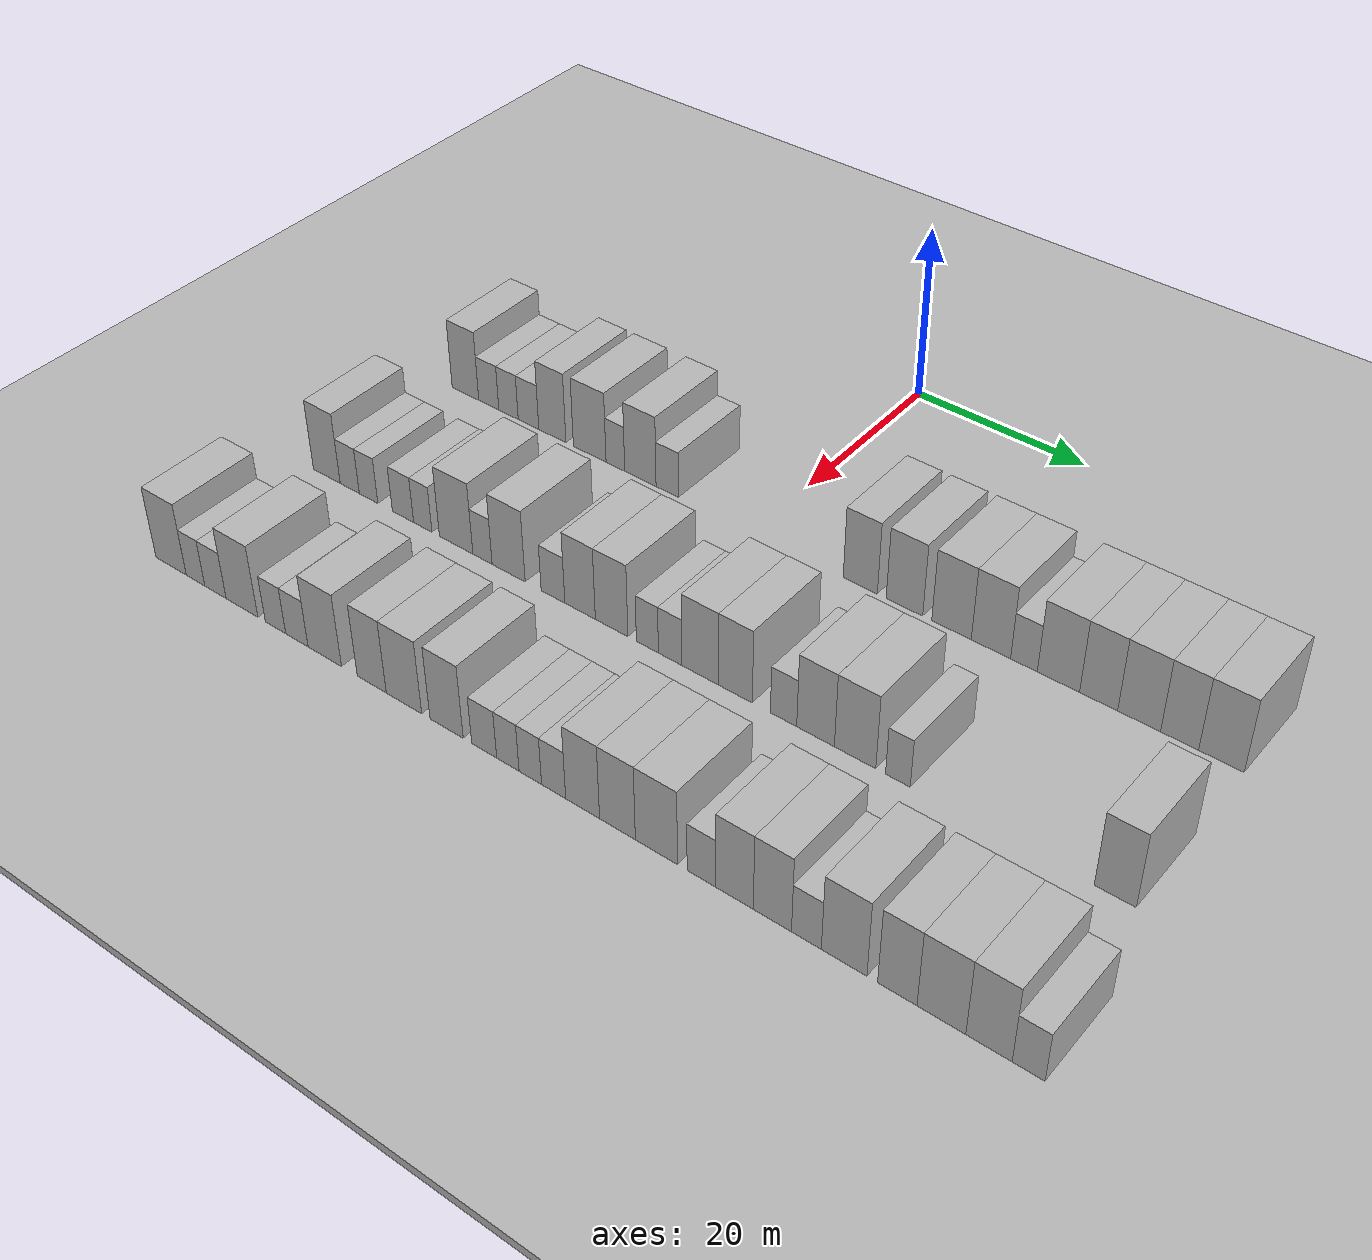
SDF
<sdf version="1.6">
 <world name="default">
  <include><name>ground_plane_1</name><uri>model://HANNAS_ground_plane</uri></include>
  <include>
   <name>ground_plane_2</name>
   <uri>model://HANNAS_ground_plane</uri>
   <pose>100 0 0  0 0 0</pose>
  </include>
  <model name="building_47">
   <static>1</static>
   <pose>25.0000 -37.3677 0 0.000000 0.000000 0.000000</pose>
   <link name="link">
    <pose>0 0 4.50 0 0 0</pose>
    <collision name="collision"><geometry><box><size>10.0000 3.7991 9.0000</size></box></geometry></collision>
    <visual name="visual">
     <cast_shadows>0</cast_shadows>
     <geometry><box><size>10.0000 3.7991 9.0000</size></box></geometry>
     <material>
      <script>
       <uri>model://HANNAS_wall/materials/scripts</uri>
       <uri>model://HANNAS_wall/materials/textures</uri>
       <name>vrc/HANNAS_wall</name>
      </script>
     </material>
    </visual>
   </link>
  </model>
  <model name="building_48">
   <static>1</static>
   <pose>25.0000 -34.0540 0 0.000000 0.000000 0.000000</pose>
   <link name="link">
    <pose>0 0 3.00 0 0 0</pose>
    <collision name="collision"><geometry><box><size>10.0000 2.8284 6.0000</size></box></geometry></collision>
    <visual name="visual">
     <cast_shadows>0</cast_shadows>
     <geometry><box><size>10.0000 2.8284 6.0000</size></box></geometry>
     <material>
      <script>
       <uri>model://HANNAS_wall/materials/scripts</uri>
       <uri>model://HANNAS_wall/materials/textures</uri>
       <name>vrc/HANNAS_wall</name>
      </script>
     </material>
    </visual>
   </link>
  </model>
  <model name="building_49">
   <static>1</static>
   <pose>25.0000 -31.2885 0 0.000000 0.000000 0.000000</pose>
   <link name="link">
    <pose>0 0 3.00 0 0 0</pose>
    <collision name="collision"><geometry><box><size>10.0000 2.7026 6.0000</size></box></geometry></collision>
    <visual name="visual">
     <cast_shadows>0</cast_shadows>
     <geometry><box><size>10.0000 2.7026 6.0000</size></box></geometry>
     <material>
      <script>
       <uri>model://HANNAS_wall/materials/scripts</uri>
       <uri>model://HANNAS_wall/materials/textures</uri>
       <name>vrc/HANNAS_wall</name>
      </script>
     </material>
    </visual>
   </link>
  </model>
  <model name="building_50">
   <static>1</static>
   <pose>25.0000 -28.5184 0 0.000000 0.000000 0.000000</pose>
   <link name="link">
    <pose>0 0 3.00 0 0 0</pose>
    <collision name="collision"><geometry><box><size>10.0000 2.8377 6.0000</size></box></geometry></collision>
    <visual name="visual">
     <cast_shadows>0</cast_shadows>
     <geometry><box><size>10.0000 2.8377 6.0000</size></box></geometry>
     <material>
      <script>
       <uri>model://HANNAS_wall/materials/scripts</uri>
       <uri>model://HANNAS_wall/materials/textures</uri>
       <name>vrc/HANNAS_wall</name>
      </script>
     </material>
    </visual>
   </link>
  </model>
  <model name="building_51">
   <static>1</static>
   <pose>25.0000 -25.2551 0 0.000000 0.000000 0.000000</pose>
   <link name="link">
    <pose>0 0 4.50 0 0 0</pose>
    <collision name="collision"><geometry><box><size>10.0000 3.6889 9.0000</size></box></geometry></collision>
    <visual name="visual">
     <cast_shadows>0</cast_shadows>
     <geometry><box><size>10.0000 3.6889 9.0000</size></box></geometry>
     <material>
      <script>
       <uri>model://HANNAS_wall/materials/scripts</uri>
       <uri>model://HANNAS_wall/materials/textures</uri>
       <name>vrc/HANNAS_wall</name>
      </script>
     </material>
    </visual>
   </link>
  </model>
  <model name="building_52">
   <static>1</static>
   <pose>25.0000 -20.2376 0 0.000000 0.000000 0.000000</pose>
   <link name="link">
    <pose>0 0 4.50 0 0 0</pose>
    <collision name="collision"><geometry><box><size>10.0000 4.3462 9.0000</size></box></geometry></collision>
    <visual name="visual">
     <cast_shadows>0</cast_shadows>
     <geometry><box><size>10.0000 4.3462 9.0000</size></box></geometry>
     <material>
      <script>
       <uri>model://HANNAS_wall/materials/scripts</uri>
       <uri>model://HANNAS_wall/materials/textures</uri>
       <name>vrc/HANNAS_wall</name>
      </script>
     </material>
    </visual>
   </link>
  </model>
  <model name="building_53">
   <static>1</static>
   <pose>25.0000 -16.8437 0 0.000000 0.000000 0.000000</pose>
   <link name="link">
    <pose>0 0 3.00 0 0 0</pose>
    <collision name="collision"><geometry><box><size>10.0000 2.4417 6.0000</size></box></geometry></collision>
    <visual name="visual">
     <cast_shadows>0</cast_shadows>
     <geometry><box><size>10.0000 2.4417 6.0000</size></box></geometry>
     <material>
      <script>
       <uri>model://HANNAS_wall/materials/scripts</uri>
       <uri>model://HANNAS_wall/materials/textures</uri>
       <name>vrc/HANNAS_wall</name>
      </script>
     </material>
    </visual>
   </link>
  </model>
  <model name="building_54">
   <static>1</static>
   <pose>25.0000 -13.5977 0 0.000000 0.000000 0.000000</pose>
   <link name="link">
    <pose>0 0 4.50 0 0 0</pose>
    <collision name="collision"><geometry><box><size>10.0000 4.0503 9.0000</size></box></geometry></collision>
    <visual name="visual">
     <cast_shadows>0</cast_shadows>
     <geometry><box><size>10.0000 4.0503 9.0000</size></box></geometry>
     <material>
      <script>
       <uri>model://HANNAS_wall/materials/scripts</uri>
       <uri>model://HANNAS_wall/materials/textures</uri>
       <name>vrc/HANNAS_wall</name>
      </script>
     </material>
    </visual>
   </link>
  </model>
  <model name="building_55">
   <static>1</static>
   <pose>25.0000 -10.1420 0 0.000000 0.000000 0.000000</pose>
   <link name="link">
    <pose>0 0 3.00 0 0 0</pose>
    <collision name="collision"><geometry><box><size>10.0000 2.8613 6.0000</size></box></geometry></collision>
    <visual name="visual">
     <cast_shadows>0</cast_shadows>
     <geometry><box><size>10.0000 2.8613 6.0000</size></box></geometry>
     <material>
      <script>
       <uri>model://HANNAS_wall/materials/scripts</uri>
       <uri>model://HANNAS_wall/materials/textures</uri>
       <name>vrc/HANNAS_wall</name>
      </script>
     </material>
    </visual>
   </link>
  </model>
  <model name="building_56">
   <static>1</static>
   <pose>25.0000 13.1468 0 0.000000 0.000000 0.000000</pose>
   <link name="link">
    <pose>0 0 4.50 0 0 0</pose>
    <collision name="collision"><geometry><box><size>10.0000 3.9054 9.0000</size></box></geometry></collision>
    <visual name="visual">
     <cast_shadows>0</cast_shadows>
     <geometry><box><size>10.0000 3.9054 9.0000</size></box></geometry>
     <material>
      <script>
       <uri>model://HANNAS_wall/materials/scripts</uri>
       <uri>model://HANNAS_wall/materials/textures</uri>
       <name>vrc/HANNAS_wall</name>
      </script>
     </material>
    </visual>
   </link>
  </model>
  <model name="building_57">
   <static>1</static>
   <pose>25.0000 18.1420 0 0.000000 0.000000 0.000000</pose>
   <link name="link">
    <pose>0 0 4.50 0 0 0</pose>
    <collision name="collision"><geometry><box><size>10.0000 4.0850 9.0000</size></box></geometry></collision>
    <visual name="visual">
     <cast_shadows>0</cast_shadows>
     <geometry><box><size>10.0000 4.0850 9.0000</size></box></geometry>
     <material>
      <script>
       <uri>model://HANNAS_wall/materials/scripts</uri>
       <uri>model://HANNAS_wall/materials/textures</uri>
       <name>vrc/HANNAS_wall</name>
      </script>
     </material>
    </visual>
   </link>
  </model>
  <model name="building_58">
   <static>1</static>
   <pose>25.0000 23.3389 0 0.000000 0.000000 0.000000</pose>
   <link name="link">
    <pose>0 0 4.50 0 0 0</pose>
    <collision name="collision"><geometry><box><size>10.0000 4.3088 9.0000</size></box></geometry></collision>
    <visual name="visual">
     <cast_shadows>0</cast_shadows>
     <geometry><box><size>10.0000 4.3088 9.0000</size></box></geometry>
     <material>
      <script>
       <uri>model://HANNAS_wall/materials/scripts</uri>
       <uri>model://HANNAS_wall/materials/textures</uri>
       <name>vrc/HANNAS_wall</name>
      </script>
     </material>
    </visual>
   </link>
  </model>
  <model name="building_59">
   <static>1</static>
   <pose>25.0000 27.5968 0 0.000000 0.000000 0.000000</pose>
   <link name="link">
    <pose>0 0 4.50 0 0 0</pose>
    <collision name="collision"><geometry><box><size>10.0000 4.2070 9.0000</size></box></geometry></collision>
    <visual name="visual">
     <cast_shadows>0</cast_shadows>
     <geometry><box><size>10.0000 4.2070 9.0000</size></box></geometry>
     <material>
      <script>
       <uri>model://HANNAS_wall/materials/scripts</uri>
       <uri>model://HANNAS_wall/materials/textures</uri>
       <name>vrc/HANNAS_wall</name>
      </script>
     </material>
    </visual>
   </link>
  </model>
  <model name="building_60">
   <static>1</static>
   <pose>25.0000 31.1059 0 0.000000 0.000000 0.000000</pose>
   <link name="link">
    <pose>0 0 3.00 0 0 0</pose>
    <collision name="collision"><geometry><box><size>10.0000 2.8114 6.0000</size></box></geometry></collision>
    <visual name="visual">
     <cast_shadows>0</cast_shadows>
     <geometry><box><size>10.0000 2.8114 6.0000</size></box></geometry>
     <material>
      <script>
       <uri>model://HANNAS_wall/materials/scripts</uri>
       <uri>model://HANNAS_wall/materials/textures</uri>
       <name>vrc/HANNAS_wall</name>
      </script>
     </material>
    </visual>
   </link>
  </model>
  <model name="building_61">
   <static>1</static>
   <pose>25.0000 34.6930 0 0.000000 0.000000 0.000000</pose>
   <link name="link">
    <pose>0 0 4.50 0 0 0</pose>
    <collision name="collision"><geometry><box><size>10.0000 4.3627 9.0000</size></box></geometry></collision>
    <visual name="visual">
     <cast_shadows>0</cast_shadows>
     <geometry><box><size>10.0000 4.3627 9.0000</size></box></geometry>
     <material>
      <script>
       <uri>model://HANNAS_wall/materials/scripts</uri>
       <uri>model://HANNAS_wall/materials/textures</uri>
       <name>vrc/HANNAS_wall</name>
      </script>
     </material>
    </visual>
   </link>
  </model>
  <model name="building_62">
   <static>1</static>
   <pose>25.0000 38.8026 0 0.000000 0.000000 0.000000</pose>
   <link name="link">
    <pose>0 0 4.50 0 0 0</pose>
    <collision name="collision"><geometry><box><size>10.0000 3.8565 9.0000</size></box></geometry></collision>
    <visual name="visual">
     <cast_shadows>0</cast_shadows>
     <geometry><box><size>10.0000 3.8565 9.0000</size></box></geometry>
     <material>
      <script>
       <uri>model://HANNAS_wall/materials/scripts</uri>
       <uri>model://HANNAS_wall/materials/textures</uri>
       <name>vrc/HANNAS_wall</name>
      </script>
     </material>
    </visual>
   </link>
  </model>
  <model name="building_63">
   <static>1</static>
   <pose>25.0000 42.8578 0 0.000000 0.000000 0.000000</pose>
   <link name="link">
    <pose>0 0 4.50 0 0 0</pose>
    <collision name="collision"><geometry><box><size>10.0000 4.2539 9.0000</size></box></geometry></collision>
    <visual name="visual">
     <cast_shadows>0</cast_shadows>
     <geometry><box><size>10.0000 4.2539 9.0000</size></box></geometry>
     <material>
      <script>
       <uri>model://HANNAS_wall/materials/scripts</uri>
       <uri>model://HANNAS_wall/materials/textures</uri>
       <name>vrc/HANNAS_wall</name>
      </script>
     </material>
    </visual>
   </link>
  </model>
  <model name="building_64">
   <static>1</static>
   <pose>25.0000 46.8342 0 0.000000 0.000000 0.000000</pose>
   <link name="link">
    <pose>0 0 4.50 0 0 0</pose>
    <collision name="collision"><geometry><box><size>10.0000 3.6990 9.0000</size></box></geometry></collision>
    <visual name="visual">
     <cast_shadows>0</cast_shadows>
     <geometry><box><size>10.0000 3.6990 9.0000</size></box></geometry>
     <material>
      <script>
       <uri>model://HANNAS_wall/materials/scripts</uri>
       <uri>model://HANNAS_wall/materials/textures</uri>
       <name>vrc/HANNAS_wall</name>
      </script>
     </material>
    </visual>
   </link>
  </model>
  <model name="building_65">
   <static>1</static>
   <pose>25.0000 50.8625 0 0.000000 0.000000 0.000000</pose>
   <link name="link">
    <pose>0 0 4.50 0 0 0</pose>
    <collision name="collision"><geometry><box><size>10.0000 4.3575 9.0000</size></box></geometry></collision>
    <visual name="visual">
     <cast_shadows>0</cast_shadows>
     <geometry><box><size>10.0000 4.3575 9.0000</size></box></geometry>
     <material>
      <script>
       <uri>model://HANNAS_wall/materials/scripts</uri>
       <uri>model://HANNAS_wall/materials/textures</uri>
       <name>vrc/HANNAS_wall</name>
      </script>
     </material>
    </visual>
   </link>
  </model>
  <model name="building_153">
   <static>1</static>
   <pose>44.0000 -38.6591 0 0.000000 0.000000 0.000000</pose>
   <link name="link">
    <pose>0 0 4.50 0 0 0</pose>
    <collision name="collision"><geometry><box><size>10.0000 3.7922 9.0000</size></box></geometry></collision>
    <visual name="visual">
     <cast_shadows>0</cast_shadows>
     <geometry><box><size>10.0000 3.7922 9.0000</size></box></geometry>
     <material>
      <script>
       <uri>model://HANNAS_wall/materials/scripts</uri>
       <uri>model://HANNAS_wall/materials/textures</uri>
       <name>vrc/HANNAS_wall</name>
      </script>
     </material>
    </visual>
   </link>
  </model>
  <model name="building_154">
   <static>1</static>
   <pose>44.0000 -35.4287 0 0.000000 0.000000 0.000000</pose>
   <link name="link">
    <pose>0 0 3.00 0 0 0</pose>
    <collision name="collision"><geometry><box><size>10.0000 2.6685 6.0000</size></box></geometry></collision>
    <visual name="visual">
     <cast_shadows>0</cast_shadows>
     <geometry><box><size>10.0000 2.6685 6.0000</size></box></geometry>
     <material>
      <script>
       <uri>model://HANNAS_wall/materials/scripts</uri>
       <uri>model://HANNAS_wall/materials/textures</uri>
       <name>vrc/HANNAS_wall</name>
      </script>
     </material>
    </visual>
   </link>
  </model>
  <model name="building_155">
   <static>1</static>
   <pose>44.0000 -32.8111 0 0.000000 0.000000 0.000000</pose>
   <link name="link">
    <pose>0 0 3.00 0 0 0</pose>
    <collision name="collision"><geometry><box><size>10.0000 2.5667 6.0000</size></box></geometry></collision>
    <visual name="visual">
     <cast_shadows>0</cast_shadows>
     <geometry><box><size>10.0000 2.5667 6.0000</size></box></geometry>
     <material>
      <script>
       <uri>model://HANNAS_wall/materials/scripts</uri>
       <uri>model://HANNAS_wall/materials/textures</uri>
       <name>vrc/HANNAS_wall</name>
      </script>
     </material>
    </visual>
   </link>
  </model>
  <model name="building_156">
   <static>1</static>
   <pose>44.0000 -28.0912 0 0.000000 0.000000 0.000000</pose>
   <link name="link">
    <pose>0 0 3.00 0 0 0</pose>
    <collision name="collision"><geometry><box><size>10.0000 2.8731 6.0000</size></box></geometry></collision>
    <visual name="visual">
     <cast_shadows>0</cast_shadows>
     <geometry><box><size>10.0000 2.8731 6.0000</size></box></geometry>
     <material>
      <script>
       <uri>model://HANNAS_wall/materials/scripts</uri>
       <uri>model://HANNAS_wall/materials/textures</uri>
       <name>vrc/HANNAS_wall</name>
      </script>
     </material>
    </visual>
   </link>
  </model>
  <model name="building_157">
   <static>1</static>
   <pose>44.0000 -25.4272 0 0.000000 0.000000 0.000000</pose>
   <link name="link">
    <pose>0 0 3.00 0 0 0</pose>
    <collision name="collision"><geometry><box><size>10.0000 2.4548 6.0000</size></box></geometry></collision>
    <visual name="visual">
     <cast_shadows>0</cast_shadows>
     <geometry><box><size>10.0000 2.4548 6.0000</size></box></geometry>
     <material>
      <script>
       <uri>model://HANNAS_wall/materials/scripts</uri>
       <uri>model://HANNAS_wall/materials/textures</uri>
       <name>vrc/HANNAS_wall</name>
      </script>
     </material>
    </visual>
   </link>
  </model>
  <model name="building_158">
   <static>1</static>
   <pose>44.0000 -21.0082 0 0.000000 0.000000 0.000000</pose>
   <link name="link">
    <pose>0 0 4.50 0 0 0</pose>
    <collision name="collision"><geometry><box><size>10.0000 4.3831 9.0000</size></box></geometry></collision>
    <visual name="visual">
     <cast_shadows>0</cast_shadows>
     <geometry><box><size>10.0000 4.3831 9.0000</size></box></geometry>
     <material>
      <script>
       <uri>model://HANNAS_wall/materials/scripts</uri>
       <uri>model://HANNAS_wall/materials/textures</uri>
       <name>vrc/HANNAS_wall</name>
      </script>
     </material>
    </visual>
   </link>
  </model>
  <model name="building_159">
   <static>1</static>
   <pose>44.0000 -17.5722 0 0.000000 0.000000 0.000000</pose>
   <link name="link">
    <pose>0 0 3.00 0 0 0</pose>
    <collision name="collision"><geometry><box><size>10.0000 2.4891 6.0000</size></box></geometry></collision>
    <visual name="visual">
     <cast_shadows>0</cast_shadows>
     <geometry><box><size>10.0000 2.4891 6.0000</size></box></geometry>
     <material>
      <script>
       <uri>model://HANNAS_wall/materials/scripts</uri>
       <uri>model://HANNAS_wall/materials/textures</uri>
       <name>vrc/HANNAS_wall</name>
      </script>
     </material>
    </visual>
   </link>
  </model>
  <model name="building_160">
   <static>1</static>
   <pose>44.0000 -14.2243 0 0.000000 0.000000 0.000000</pose>
   <link name="link">
    <pose>0 0 4.50 0 0 0</pose>
    <collision name="collision"><geometry><box><size>10.0000 4.2065 9.0000</size></box></geometry></collision>
    <visual name="visual">
     <cast_shadows>0</cast_shadows>
     <geometry><box><size>10.0000 4.2065 9.0000</size></box></geometry>
     <material>
      <script>
       <uri>model://HANNAS_wall/materials/scripts</uri>
       <uri>model://HANNAS_wall/materials/textures</uri>
       <name>vrc/HANNAS_wall</name>
      </script>
     </material>
    </visual>
   </link>
  </model>
  <model name="building_161">
   <static>1</static>
   <pose>44.0000 -8.6510 0 0.000000 0.000000 0.000000</pose>
   <link name="link">
    <pose>0 0 3.00 0 0 0</pose>
    <collision name="collision"><geometry><box><size>10.0000 2.9402 6.0000</size></box></geometry></collision>
    <visual name="visual">
     <cast_shadows>0</cast_shadows>
     <geometry><box><size>10.0000 2.9402 6.0000</size></box></geometry>
     <material>
      <script>
       <uri>model://HANNAS_wall/materials/scripts</uri>
       <uri>model://HANNAS_wall/materials/textures</uri>
       <name>vrc/HANNAS_wall</name>
      </script>
     </material>
    </visual>
   </link>
  </model>
  <model name="building_162">
   <static>1</static>
   <pose>44.0000 -5.3216 0 0.000000 0.000000 0.000000</pose>
   <link name="link">
    <pose>0 0 4.50 0 0 0</pose>
    <collision name="collision"><geometry><box><size>10.0000 3.7186 9.0000</size></box></geometry></collision>
    <visual name="visual">
     <cast_shadows>0</cast_shadows>
     <geometry><box><size>10.0000 3.7186 9.0000</size></box></geometry>
     <material>
      <script>
       <uri>model://HANNAS_wall/materials/scripts</uri>
       <uri>model://HANNAS_wall/materials/textures</uri>
       <name>vrc/HANNAS_wall</name>
      </script>
     </material>
    </visual>
   </link>
  </model>
  <model name="building_163">
   <static>1</static>
   <pose>44.0000 -1.5085 0 0.000000 0.000000 0.000000</pose>
   <link name="link">
    <pose>0 0 4.50 0 0 0</pose>
    <collision name="collision"><geometry><box><size>10.0000 3.9077 9.0000</size></box></geometry></collision>
    <visual name="visual">
     <cast_shadows>0</cast_shadows>
     <geometry><box><size>10.0000 3.9077 9.0000</size></box></geometry>
     <material>
      <script>
       <uri>model://HANNAS_wall/materials/scripts</uri>
       <uri>model://HANNAS_wall/materials/textures</uri>
       <name>vrc/HANNAS_wall</name>
      </script>
     </material>
    </visual>
   </link>
  </model>
  <model name="building_164">
   <static>1</static>
   <pose>44.0000 2.7362 0 0.000000 0.000000 0.000000</pose>
   <link name="link">
    <pose>0 0 3.00 0 0 0</pose>
    <collision name="collision"><geometry><box><size>10.0000 2.5817 6.0000</size></box></geometry></collision>
    <visual name="visual">
     <cast_shadows>0</cast_shadows>
     <geometry><box><size>10.0000 2.5817 6.0000</size></box></geometry>
     <material>
      <script>
       <uri>model://HANNAS_wall/materials/scripts</uri>
       <uri>model://HANNAS_wall/materials/textures</uri>
       <name>vrc/HANNAS_wall</name>
      </script>
     </material>
    </visual>
   </link>
  </model>
  <model name="building_165">
   <static>1</static>
   <pose>44.0000 5.3833 0 0.000000 0.000000 0.000000</pose>
   <link name="link">
    <pose>0 0 3.00 0 0 0</pose>
    <collision name="collision"><geometry><box><size>10.0000 2.7125 6.0000</size></box></geometry></collision>
    <visual name="visual">
     <cast_shadows>0</cast_shadows>
     <geometry><box><size>10.0000 2.7125 6.0000</size></box></geometry>
     <material>
      <script>
       <uri>model://HANNAS_wall/materials/scripts</uri>
       <uri>model://HANNAS_wall/materials/textures</uri>
       <name>vrc/HANNAS_wall</name>
      </script>
     </material>
    </visual>
   </link>
  </model>
  <model name="building_166">
   <static>1</static>
   <pose>44.0000 8.8289 0 0.000000 0.000000 0.000000</pose>
   <link name="link">
    <pose>0 0 4.50 0 0 0</pose>
    <collision name="collision"><geometry><box><size>10.0000 4.1788 9.0000</size></box></geometry></collision>
    <visual name="visual">
     <cast_shadows>0</cast_shadows>
     <geometry><box><size>10.0000 4.1788 9.0000</size></box></geometry>
     <material>
      <script>
       <uri>model://HANNAS_wall/materials/scripts</uri>
       <uri>model://HANNAS_wall/materials/textures</uri>
       <name>vrc/HANNAS_wall</name>
      </script>
     </material>
    </visual>
   </link>
  </model>
  <model name="building_167">
   <static>1</static>
   <pose>44.0000 12.8094 0 0.000000 0.000000 0.000000</pose>
   <link name="link">
    <pose>0 0 4.50 0 0 0</pose>
    <collision name="collision"><geometry><box><size>10.0000 3.7822 9.0000</size></box></geometry></collision>
    <visual name="visual">
     <cast_shadows>0</cast_shadows>
     <geometry><box><size>10.0000 3.7822 9.0000</size></box></geometry>
     <material>
      <script>
       <uri>model://HANNAS_wall/materials/scripts</uri>
       <uri>model://HANNAS_wall/materials/textures</uri>
       <name>vrc/HANNAS_wall</name>
      </script>
     </material>
    </visual>
   </link>
  </model>
  <model name="building_168">
   <static>1</static>
   <pose>44.0000 18.1317 0 0.000000 0.000000 0.000000</pose>
   <link name="link">
    <pose>0 0 3.00 0 0 0</pose>
    <collision name="collision"><geometry><box><size>10.0000 2.8624 6.0000</size></box></geometry></collision>
    <visual name="visual">
     <cast_shadows>0</cast_shadows>
     <geometry><box><size>10.0000 2.8624 6.0000</size></box></geometry>
     <material>
      <script>
       <uri>model://HANNAS_wall/materials/scripts</uri>
       <uri>model://HANNAS_wall/materials/textures</uri>
       <name>vrc/HANNAS_wall</name>
      </script>
     </material>
    </visual>
   </link>
  </model>
  <model name="building_169">
   <static>1</static>
   <pose>44.0000 21.5792 0 0.000000 0.000000 0.000000</pose>
   <link name="link">
    <pose>0 0 4.50 0 0 0</pose>
    <collision name="collision"><geometry><box><size>10.0000 4.0326 9.0000</size></box></geometry></collision>
    <visual name="visual">
     <cast_shadows>0</cast_shadows>
     <geometry><box><size>10.0000 4.0326 9.0000</size></box></geometry>
     <material>
      <script>
       <uri>model://HANNAS_wall/materials/scripts</uri>
       <uri>model://HANNAS_wall/materials/textures</uri>
       <name>vrc/HANNAS_wall</name>
      </script>
     </material>
    </visual>
   </link>
  </model>
  <model name="building_170">
   <static>1</static>
   <pose>44.0000 25.7644 0 0.000000 0.000000 0.000000</pose>
   <link name="link">
    <pose>0 0 4.50 0 0 0</pose>
    <collision name="collision"><geometry><box><size>10.0000 4.3377 9.0000</size></box></geometry></collision>
    <visual name="visual">
     <cast_shadows>0</cast_shadows>
     <geometry><box><size>10.0000 4.3377 9.0000</size></box></geometry>
     <material>
      <script>
       <uri>model://HANNAS_wall/materials/scripts</uri>
       <uri>model://HANNAS_wall/materials/textures</uri>
       <name>vrc/HANNAS_wall</name>
      </script>
     </material>
    </visual>
   </link>
  </model>
  <model name="building_171">
   <static>1</static>
   <pose>44.0000 30.2020 0 0.000000 0.000000 0.000000</pose>
   <link name="link">
    <pose>0 0 3.00 0 0 0</pose>
    <collision name="collision"><geometry><box><size>10.0000 2.5374 6.0000</size></box></geometry></collision>
    <visual name="visual">
     <cast_shadows>0</cast_shadows>
     <geometry><box><size>10.0000 2.5374 6.0000</size></box></geometry>
     <material>
      <script>
       <uri>model://HANNAS_wall/materials/scripts</uri>
       <uri>model://HANNAS_wall/materials/textures</uri>
       <name>vrc/HANNAS_wall</name>
      </script>
     </material>
    </visual>
   </link>
  </model>
  <model name="building_172">
   <static>1</static>
   <pose>44.0000 51.2526 0 0.000000 0.000000 0.000000</pose>
   <link name="link">
    <pose>0 0 4.50 0 0 0</pose>
    <collision name="collision"><geometry><box><size>10.0000 3.8546 9.0000</size></box></geometry></collision>
    <visual name="visual">
     <cast_shadows>0</cast_shadows>
     <geometry><box><size>10.0000 3.8546 9.0000</size></box></geometry>
     <material>
      <script>
       <uri>model://HANNAS_wall/materials/scripts</uri>
       <uri>model://HANNAS_wall/materials/textures</uri>
       <name>vrc/HANNAS_wall</name>
      </script>
     </material>
    </visual>
   </link>
  </model>
  <model name="building_262">
   <static>1</static>
   <pose>63.0000 -40.2764 0 0.000000 0.000000 0.000000</pose>
   <link name="link">
    <pose>0 0 4.50 0 0 0</pose>
    <collision name="collision"><geometry><box><size>10.0000 4.2928 9.0000</size></box></geometry></collision>
    <visual name="visual">
     <cast_shadows>0</cast_shadows>
     <geometry><box><size>10.0000 4.2928 9.0000</size></box></geometry>
     <material>
      <script>
       <uri>model://HANNAS_wall/materials/scripts</uri>
       <uri>model://HANNAS_wall/materials/textures</uri>
       <name>vrc/HANNAS_wall</name>
      </script>
     </material>
    </visual>
   </link>
  </model>
  <model name="building_263">
   <static>1</static>
   <pose>63.0000 -36.8367 0 0.000000 0.000000 0.000000</pose>
   <link name="link">
    <pose>0 0 3.00 0 0 0</pose>
    <collision name="collision"><geometry><box><size>10.0000 2.5865 6.0000</size></box></geometry></collision>
    <visual name="visual">
     <cast_shadows>0</cast_shadows>
     <geometry><box><size>10.0000 2.5865 6.0000</size></box></geometry>
     <material>
      <script>
       <uri>model://HANNAS_wall/materials/scripts</uri>
       <uri>model://HANNAS_wall/materials/textures</uri>
       <name>vrc/HANNAS_wall</name>
      </script>
     </material>
    </visual>
   </link>
  </model>
  <model name="building_264">
   <static>1</static>
   <pose>63.0000 -34.0767 0 0.000000 0.000000 0.000000</pose>
   <link name="link">
    <pose>0 0 3.00 0 0 0</pose>
    <collision name="collision"><geometry><box><size>10.0000 2.9336 6.0000</size></box></geometry></collision>
    <visual name="visual">
     <cast_shadows>0</cast_shadows>
     <geometry><box><size>10.0000 2.9336 6.0000</size></box></geometry>
     <material>
      <script>
       <uri>model://HANNAS_wall/materials/scripts</uri>
       <uri>model://HANNAS_wall/materials/textures</uri>
       <name>vrc/HANNAS_wall</name>
      </script>
     </material>
    </visual>
   </link>
  </model>
  <model name="building_265">
   <static>1</static>
   <pose>63.0000 -30.4576 0 0.000000 0.000000 0.000000</pose>
   <link name="link">
    <pose>0 0 4.50 0 0 0</pose>
    <collision name="collision"><geometry><box><size>10.0000 4.3045 9.0000</size></box></geometry></collision>
    <visual name="visual">
     <cast_shadows>0</cast_shadows>
     <geometry><box><size>10.0000 4.3045 9.0000</size></box></geometry>
     <material>
      <script>
       <uri>model://HANNAS_wall/materials/scripts</uri>
       <uri>model://HANNAS_wall/materials/textures</uri>
       <name>vrc/HANNAS_wall</name>
      </script>
     </material>
    </visual>
   </link>
  </model>
  <model name="building_266">
   <static>1</static>
   <pose>63.0000 -25.9549 0 0.000000 0.000000 0.000000</pose>
   <link name="link">
    <pose>0 0 3.00 0 0 0</pose>
    <collision name="collision"><geometry><box><size>10.0000 2.7009 6.0000</size></box></geometry></collision>
    <visual name="visual">
     <cast_shadows>0</cast_shadows>
     <geometry><box><size>10.0000 2.7009 6.0000</size></box></geometry>
     <material>
      <script>
       <uri>model://HANNAS_wall/materials/scripts</uri>
       <uri>model://HANNAS_wall/materials/textures</uri>
       <name>vrc/HANNAS_wall</name>
      </script>
     </material>
    </visual>
   </link>
  </model>
  <model name="building_267">
   <static>1</static>
   <pose>63.0000 -23.1401 0 0.000000 0.000000 0.000000</pose>
   <link name="link">
    <pose>0 0 3.00 0 0 0</pose>
    <collision name="collision"><geometry><box><size>10.0000 2.9287 6.0000</size></box></geometry></collision>
    <visual name="visual">
     <cast_shadows>0</cast_shadows>
     <geometry><box><size>10.0000 2.9287 6.0000</size></box></geometry>
     <material>
      <script>
       <uri>model://HANNAS_wall/materials/scripts</uri>
       <uri>model://HANNAS_wall/materials/textures</uri>
       <name>vrc/HANNAS_wall</name>
      </script>
     </material>
    </visual>
   </link>
  </model>
  <model name="building_268">
   <static>1</static>
   <pose>63.0000 -19.5271 0 0.000000 0.000000 0.000000</pose>
   <link name="link">
    <pose>0 0 4.50 0 0 0</pose>
    <collision name="collision"><geometry><box><size>10.0000 4.2974 9.0000</size></box></geometry></collision>
    <visual name="visual">
     <cast_shadows>0</cast_shadows>
     <geometry><box><size>10.0000 4.2974 9.0000</size></box></geometry>
     <material>
      <script>
       <uri>model://HANNAS_wall/materials/scripts</uri>
       <uri>model://HANNAS_wall/materials/textures</uri>
       <name>vrc/HANNAS_wall</name>
      </script>
     </material>
    </visual>
   </link>
  </model>
  <model name="building_269">
   <static>1</static>
   <pose>63.0000 -13.5703 0 0.000000 0.000000 0.000000</pose>
   <link name="link">
    <pose>0 0 4.50 0 0 0</pose>
    <collision name="collision"><geometry><box><size>10.0000 3.6161 9.0000</size></box></geometry></collision>
    <visual name="visual">
     <cast_shadows>0</cast_shadows>
     <geometry><box><size>10.0000 3.6161 9.0000</size></box></geometry>
     <material>
      <script>
       <uri>model://HANNAS_wall/materials/scripts</uri>
       <uri>model://HANNAS_wall/materials/textures</uri>
       <name>vrc/HANNAS_wall</name>
      </script>
     </material>
    </visual>
   </link>
  </model>
  <model name="building_270">
   <static>1</static>
   <pose>63.0000 -9.5911 0 0.000000 0.000000 0.000000</pose>
   <link name="link">
    <pose>0 0 4.50 0 0 0</pose>
    <collision name="collision"><geometry><box><size>10.0000 4.3423 9.0000</size></box></geometry></collision>
    <visual name="visual">
     <cast_shadows>0</cast_shadows>
     <geometry><box><size>10.0000 4.3423 9.0000</size></box></geometry>
     <material>
      <script>
       <uri>model://HANNAS_wall/materials/scripts</uri>
       <uri>model://HANNAS_wall/materials/textures</uri>
       <name>vrc/HANNAS_wall</name>
      </script>
     </material>
    </visual>
   </link>
  </model>
  <model name="building_271">
   <static>1</static>
   <pose>63.0000 -4.4396 0 0.000000 0.000000 0.000000</pose>
   <link name="link">
    <pose>0 0 4.50 0 0 0</pose>
    <collision name="collision"><geometry><box><size>10.0000 3.9608 9.0000</size></box></geometry></collision>
    <visual name="visual">
     <cast_shadows>0</cast_shadows>
     <geometry><box><size>10.0000 3.9608 9.0000</size></box></geometry>
     <material>
      <script>
       <uri>model://HANNAS_wall/materials/scripts</uri>
       <uri>model://HANNAS_wall/materials/textures</uri>
       <name>vrc/HANNAS_wall</name>
      </script>
     </material>
    </visual>
   </link>
  </model>
  <model name="building_272">
   <static>1</static>
   <pose>63.0000 -0.0026 0 0.000000 0.000000 0.000000</pose>
   <link name="link">
    <pose>0 0 3.00 0 0 0</pose>
    <collision name="collision"><geometry><box><size>10.0000 2.9131 6.0000</size></box></geometry></collision>
    <visual name="visual">
     <cast_shadows>0</cast_shadows>
     <geometry><box><size>10.0000 2.9131 6.0000</size></box></geometry>
     <material>
      <script>
       <uri>model://HANNAS_wall/materials/scripts</uri>
       <uri>model://HANNAS_wall/materials/textures</uri>
       <name>vrc/HANNAS_wall</name>
      </script>
     </material>
    </visual>
   </link>
  </model>
  <model name="building_273">
   <static>1</static>
   <pose>63.0000 2.7423 0 0.000000 0.000000 0.000000</pose>
   <link name="link">
    <pose>0 0 3.00 0 0 0</pose>
    <collision name="collision"><geometry><box><size>10.0000 2.5767 6.0000</size></box></geometry></collision>
    <visual name="visual">
     <cast_shadows>0</cast_shadows>
     <geometry><box><size>10.0000 2.5767 6.0000</size></box></geometry>
     <material>
      <script>
       <uri>model://HANNAS_wall/materials/scripts</uri>
       <uri>model://HANNAS_wall/materials/textures</uri>
       <name>vrc/HANNAS_wall</name>
      </script>
     </material>
    </visual>
   </link>
  </model>
  <model name="building_274">
   <static>1</static>
   <pose>63.0000 5.3092 0 0.000000 0.000000 0.000000</pose>
   <link name="link">
    <pose>0 0 3.00 0 0 0</pose>
    <collision name="collision"><geometry><box><size>10.0000 2.5573 6.0000</size></box></geometry></collision>
    <visual name="visual">
     <cast_shadows>0</cast_shadows>
     <geometry><box><size>10.0000 2.5573 6.0000</size></box></geometry>
     <material>
      <script>
       <uri>model://HANNAS_wall/materials/scripts</uri>
       <uri>model://HANNAS_wall/materials/textures</uri>
       <name>vrc/HANNAS_wall</name>
      </script>
     </material>
    </visual>
   </link>
  </model>
  <model name="building_275">
   <static>1</static>
   <pose>63.0000 7.9377 0 0.000000 0.000000 0.000000</pose>
   <link name="link">
    <pose>0 0 3.00 0 0 0</pose>
    <collision name="collision"><geometry><box><size>10.0000 2.6997 6.0000</size></box></geometry></collision>
    <visual name="visual">
     <cast_shadows>0</cast_shadows>
     <geometry><box><size>10.0000 2.6997 6.0000</size></box></geometry>
     <material>
      <script>
       <uri>model://HANNAS_wall/materials/scripts</uri>
       <uri>model://HANNAS_wall/materials/textures</uri>
       <name>vrc/HANNAS_wall</name>
      </script>
     </material>
    </visual>
   </link>
  </model>
  <model name="building_276">
   <static>1</static>
   <pose>63.0000 11.1549 0 0.000000 0.000000 0.000000</pose>
   <link name="link">
    <pose>0 0 4.50 0 0 0</pose>
    <collision name="collision"><geometry><box><size>10.0000 3.7347 9.0000</size></box></geometry></collision>
    <visual name="visual">
     <cast_shadows>0</cast_shadows>
     <geometry><box><size>10.0000 3.7347 9.0000</size></box></geometry>
     <material>
      <script>
       <uri>model://HANNAS_wall/materials/scripts</uri>
       <uri>model://HANNAS_wall/materials/textures</uri>
       <name>vrc/HANNAS_wall</name>
      </script>
     </material>
    </visual>
   </link>
  </model>
  <model name="building_277">
   <static>1</static>
   <pose>63.0000 14.9537 0 0.000000 0.000000 0.000000</pose>
   <link name="link">
    <pose>0 0 4.50 0 0 0</pose>
    <collision name="collision"><geometry><box><size>10.0000 3.8627 9.0000</size></box></geometry></collision>
    <visual name="visual">
     <cast_shadows>0</cast_shadows>
     <geometry><box><size>10.0000 3.8627 9.0000</size></box></geometry>
     <material>
      <script>
       <uri>model://HANNAS_wall/materials/scripts</uri>
       <uri>model://HANNAS_wall/materials/textures</uri>
       <name>vrc/HANNAS_wall</name>
      </script>
     </material>
    </visual>
   </link>
  </model>
  <model name="building_278">
   <static>1</static>
   <pose>63.0000 19.1101 0 0.000000 0.000000 0.000000</pose>
   <link name="link">
    <pose>0 0 4.50 0 0 0</pose>
    <collision name="collision"><geometry><box><size>10.0000 4.4501 9.0000</size></box></geometry></collision>
    <visual name="visual">
     <cast_shadows>0</cast_shadows>
     <geometry><box><size>10.0000 4.4501 9.0000</size></box></geometry>
     <material>
      <script>
       <uri>model://HANNAS_wall/materials/scripts</uri>
       <uri>model://HANNAS_wall/materials/textures</uri>
       <name>vrc/HANNAS_wall</name>
      </script>
     </material>
    </visual>
   </link>
  </model>
  <model name="building_279">
   <static>1</static>
   <pose>63.0000 23.7899 0 0.000000 0.000000 0.000000</pose>
   <link name="link">
    <pose>0 0 3.00 0 0 0</pose>
    <collision name="collision"><geometry><box><size>10.0000 2.9095 6.0000</size></box></geometry></collision>
    <visual name="visual">
     <cast_shadows>0</cast_shadows>
     <geometry><box><size>10.0000 2.9095 6.0000</size></box></geometry>
     <material>
      <script>
       <uri>model://HANNAS_wall/materials/scripts</uri>
       <uri>model://HANNAS_wall/materials/textures</uri>
       <name>vrc/HANNAS_wall</name>
      </script>
     </material>
    </visual>
   </link>
  </model>
  <model name="building_280">
   <static>1</static>
   <pose>63.0000 27.1574 0 0.000000 0.000000 0.000000</pose>
   <link name="link">
    <pose>0 0 4.50 0 0 0</pose>
    <collision name="collision"><geometry><box><size>10.0000 3.8254 9.0000</size></box></geometry></collision>
    <visual name="visual">
     <cast_shadows>0</cast_shadows>
     <geometry><box><size>10.0000 3.8254 9.0000</size></box></geometry>
     <material>
      <script>
       <uri>model://HANNAS_wall/materials/scripts</uri>
       <uri>model://HANNAS_wall/materials/textures</uri>
       <name>vrc/HANNAS_wall</name>
      </script>
     </material>
    </visual>
   </link>
  </model>
  <model name="building_281">
   <static>1</static>
   <pose>63.0000 30.9663 0 0.000000 0.000000 0.000000</pose>
   <link name="link">
    <pose>0 0 4.50 0 0 0</pose>
    <collision name="collision"><geometry><box><size>10.0000 3.7924 9.0000</size></box></geometry></collision>
    <visual name="visual">
     <cast_shadows>0</cast_shadows>
     <geometry><box><size>10.0000 3.7924 9.0000</size></box></geometry>
     <material>
      <script>
       <uri>model://HANNAS_wall/materials/scripts</uri>
       <uri>model://HANNAS_wall/materials/textures</uri>
       <name>vrc/HANNAS_wall</name>
      </script>
     </material>
    </visual>
   </link>
  </model>
  <model name="building_282">
   <static>1</static>
   <pose>63.0000 34.3117 0 0.000000 0.000000 0.000000</pose>
   <link name="link">
    <pose>0 0 3.00 0 0 0</pose>
    <collision name="collision"><geometry><box><size>10.0000 2.8985 6.0000</size></box></geometry></collision>
    <visual name="visual">
     <cast_shadows>0</cast_shadows>
     <geometry><box><size>10.0000 2.8985 6.0000</size></box></geometry>
     <material>
      <script>
       <uri>model://HANNAS_wall/materials/scripts</uri>
       <uri>model://HANNAS_wall/materials/textures</uri>
       <name>vrc/HANNAS_wall</name>
      </script>
     </material>
    </visual>
   </link>
  </model>
  <model name="building_283">
   <static>1</static>
   <pose>63.0000 37.9365 0 0.000000 0.000000 0.000000</pose>
   <link name="link">
    <pose>0 0 4.50 0 0 0</pose>
    <collision name="collision"><geometry><box><size>10.0000 4.3510 9.0000</size></box></geometry></collision>
    <visual name="visual">
     <cast_shadows>0</cast_shadows>
     <geometry><box><size>10.0000 4.3510 9.0000</size></box></geometry>
     <material>
      <script>
       <uri>model://HANNAS_wall/materials/scripts</uri>
       <uri>model://HANNAS_wall/materials/textures</uri>
       <name>vrc/HANNAS_wall</name>
      </script>
     </material>
    </visual>
   </link>
  </model>
  <model name="building_284">
   <static>1</static>
   <pose>63.0000 42.9342 0 0.000000 0.000000 0.000000</pose>
   <link name="link">
    <pose>0 0 4.50 0 0 0</pose>
    <collision name="collision"><geometry><box><size>10.0000 3.6445 9.0000</size></box></geometry></collision>
    <visual name="visual">
     <cast_shadows>0</cast_shadows>
     <geometry><box><size>10.0000 3.6445 9.0000</size></box></geometry>
     <material>
      <script>
       <uri>model://HANNAS_wall/materials/scripts</uri>
       <uri>model://HANNAS_wall/materials/textures</uri>
       <name>vrc/HANNAS_wall</name>
      </script>
     </material>
    </visual>
   </link>
  </model>
  <model name="building_285">
   <static>1</static>
   <pose>63.0000 46.9667 0 0.000000 0.000000 0.000000</pose>
   <link name="link">
    <pose>0 0 4.50 0 0 0</pose>
    <collision name="collision"><geometry><box><size>10.0000 4.4204 9.0000</size></box></geometry></collision>
    <visual name="visual">
     <cast_shadows>0</cast_shadows>
     <geometry><box><size>10.0000 4.4204 9.0000</size></box></geometry>
     <material>
      <script>
       <uri>model://HANNAS_wall/materials/scripts</uri>
       <uri>model://HANNAS_wall/materials/textures</uri>
       <name>vrc/HANNAS_wall</name>
      </script>
     </material>
    </visual>
   </link>
  </model>
  <model name="building_286">
   <static>1</static>
   <pose>63.0000 51.2245 0 0.000000 0.000000 0.000000</pose>
   <link name="link">
    <pose>0 0 4.50 0 0 0</pose>
    <collision name="collision"><geometry><box><size>10.0000 4.0952 9.0000</size></box></geometry></collision>
    <visual name="visual">
     <cast_shadows>0</cast_shadows>
     <geometry><box><size>10.0000 4.0952 9.0000</size></box></geometry>
     <material>
      <script>
       <uri>model://HANNAS_wall/materials/scripts</uri>
       <uri>model://HANNAS_wall/materials/textures</uri>
       <name>vrc/HANNAS_wall</name>
      </script>
     </material>
    </visual>
   </link>
  </model>
  <model name="building_287">
   <static>1</static>
   <pose>63.0000 54.6968 0 0.000000 0.000000 0.000000</pose>
   <link name="link">
    <pose>0 0 3.00 0 0 0</pose>
    <collision name="collision"><geometry><box><size>10.0000 2.8494 6.0000</size></box></geometry></collision>
    <visual name="visual">
     <cast_shadows>0</cast_shadows>
     <geometry><box><size>10.0000 2.8494 6.0000</size></box></geometry>
     <material>
      <script>
       <uri>model://HANNAS_wall/materials/scripts</uri>
       <uri>model://HANNAS_wall/materials/textures</uri>
       <name>vrc/HANNAS_wall</name>
      </script>
     </material>
    </visual>
   </link>
  </model>
 </world>
</sdf>
